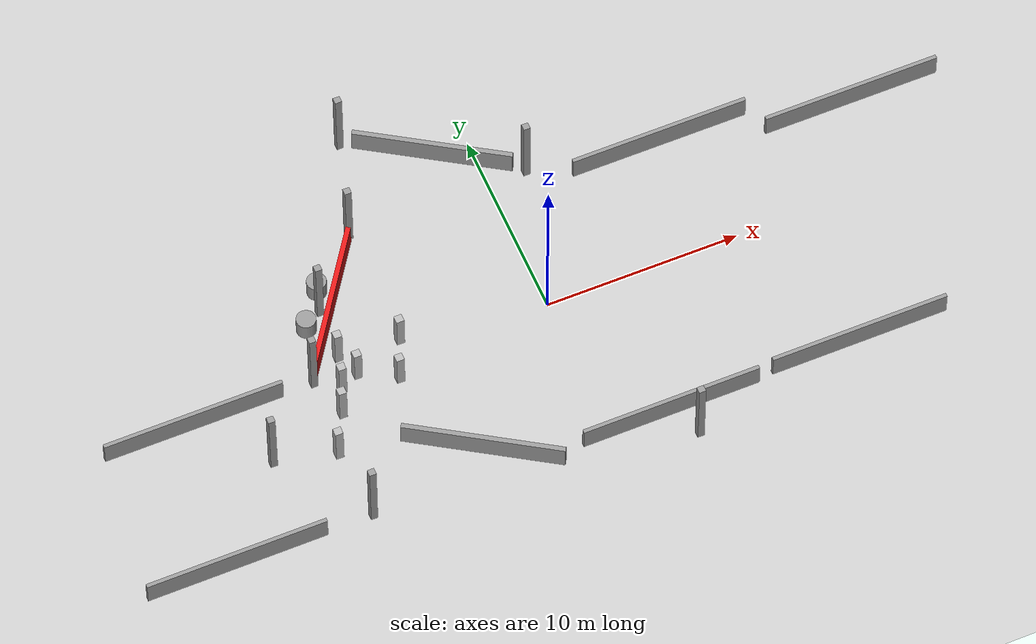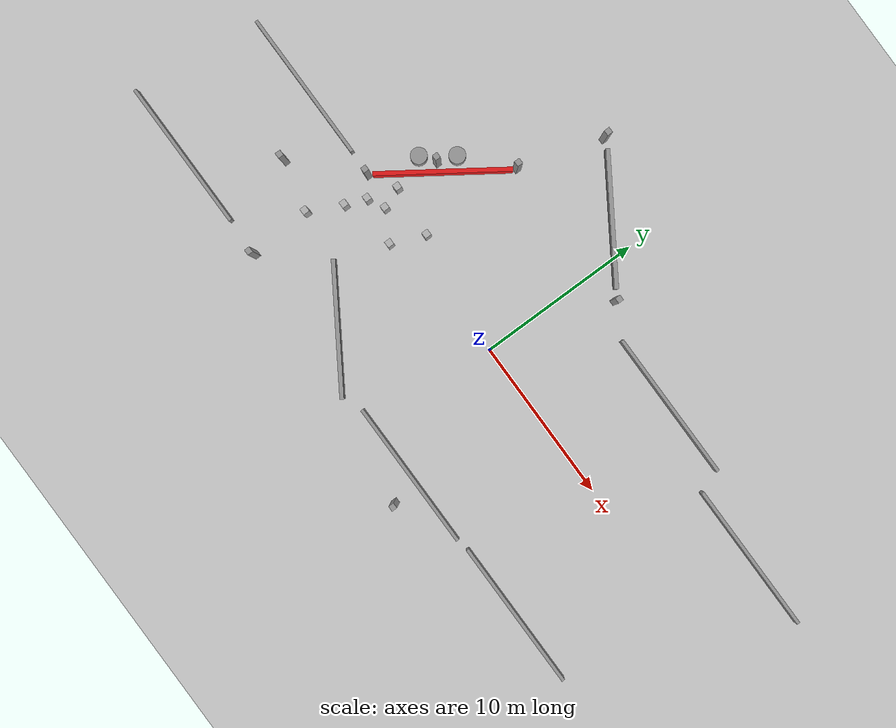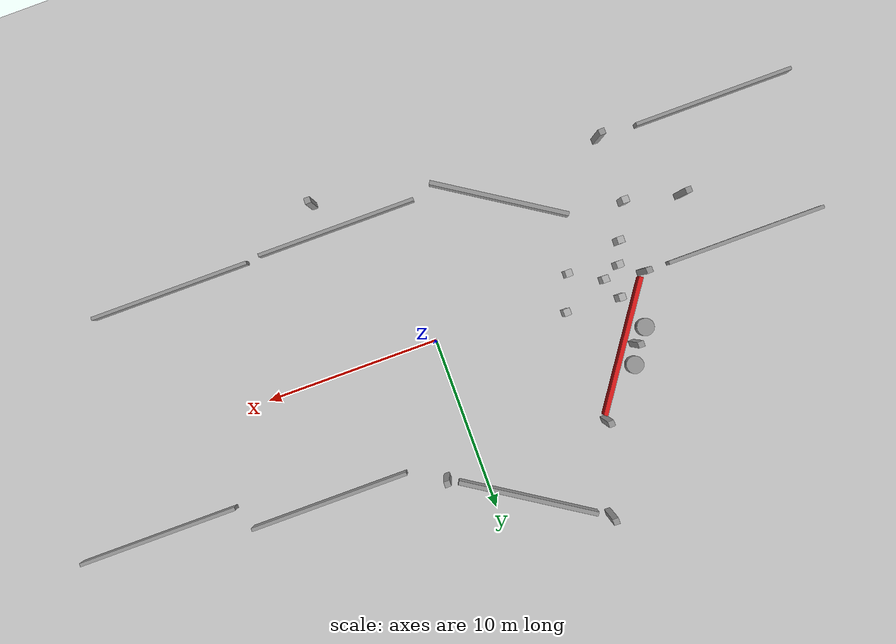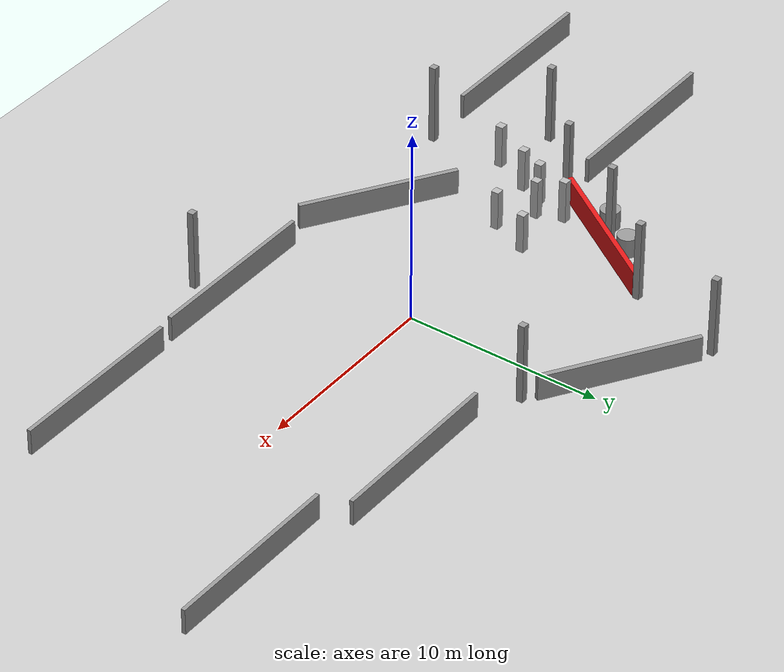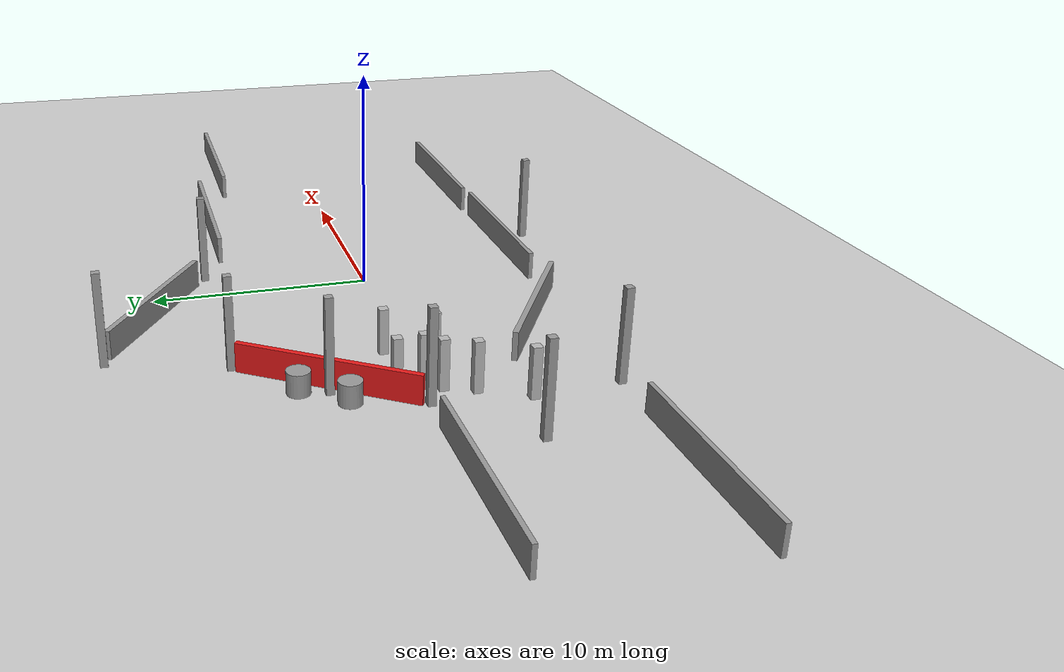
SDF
<sdf version="1.7">
 <world name="default">
  <plugin name="hello_world" filename="libhello_world.so"/>
  <model name="box">
   <pose>-10 0 0 0 0 0</pose>
   <link name="link">
    <collision name="collision"><geometry><box><size>0.4 0.4 0.28</size></box></geometry></collision>
    <visual name="visual"><geometry><box><size>0.4 0.4 4</size></box></geometry></visual>
   </link>
   <plugin name="move_obj" filename="libmove_obj.so"/>
  </model>
  <model name="box1">
   <pose>-7.377 1 0 0 0 0</pose>
   <link name="link">
    <collision name="collision"><geometry><box><size>0.4 0.4 0.28</size></box></geometry></collision>
    <visual name="visual"><geometry><box><size>0.4 0.4 4</size></box></geometry></visual>
   </link>
   <plugin name="move_obj" filename="libmove_obj.so"/>
  </model>
  <model name="box2">
   <pose>-8.2 -1 0 0 0 0</pose>
   <link name="link">
    <collision name="collision"><geometry><box><size>0.4 0.4 0.28</size></box></geometry></collision>
    <visual name="visual"><geometry><box><size>0.4 0.4 4</size></box></geometry></visual>
   </link>
   <plugin name="move_obj" filename="libmove_obj.so"/>
  </model>
  <model name="box3">
   <pose>-11 -0.5 0 0 0 0</pose>
   <link name="link">
    <collision name="collision"><geometry><box><size>0.4 0.4 0.28</size></box></geometry></collision>
    <visual name="visual"><geometry><box><size>0.4 0.4 4.4</size></box></geometry></visual>
   </link>
   <plugin name="move_obj" filename="libmove_obj.so"/>
  </model>
  <model name="box4">
   <pose>-10.5 1.25 0 0 0 0</pose>
   <link name="link">
    <collision name="collision"><geometry><box><size>0.4 0.4 0.28</size></box></geometry></collision>
    <visual name="visual"><geometry><box><size>0.4 0.4 4.4</size></box></geometry></visual>
   </link>
   <plugin name="move_obj" filename="libmove_obj.so"/>
  </model>
  <model name="box5">
   <pose>-11.5 -1.75 0 0 0 0</pose>
   <link name="link">
    <collision name="collision"><geometry><box><size>0.4 0.4 0.28</size></box></geometry></collision>
    <visual name="visual"><geometry><box><size>0.4 0.4 4.4</size></box></geometry></visual>
   </link>
   <plugin name="move_obj" filename="libmove_obj.so"/>
  </model>
  <model name="box6">
   <pose>-12.5 -3.75 0 0 0 0</pose>
   <link name="link">
    <collision name="collision"><geometry><box><size>0.4 0.4 0.28</size></box></geometry></collision>
    <visual name="visual"><geometry><box><size>0.4 0.4 4.4</size></box></geometry></visual>
   </link>
   <plugin name="move_obj" filename="libmove_obj.so"/>
  </model>
  <light name="sun" type="directional">
   <pose>0 0 10 0 -0 0</pose>
   <diffuse>0.8 0.8 0.8 1</diffuse>
   <specular>0.2 0.2 0.2 1</specular>
   <attenuation>
    <range>1000</range>
    <constant>0.9</constant>
    <linear>0.01</linear>
    <quadratic>0.001</quadratic>
   </attenuation>
   <direction>-0.5 0.1 -0.9</direction>
   <spot><inner_angle>0</inner_angle><outer_angle>0</outer_angle><falloff>0</falloff></spot>
  </light>
  <model name="ground_plane">
   <static>1</static>
   <link name="link">
    <collision name="collision">
     <geometry><plane><normal>0 0 1</normal><size>100 100</size></plane></geometry>
     <surface>
      <contact><collide_bitmask>65535</collide_bitmask></contact>
      <friction><ode><mu>100</mu><mu2>50</mu2></ode></friction>
     </surface>
    </collision>
    <visual name="visual">
     <cast_shadows>0</cast_shadows>
     <geometry><plane><normal>0 0 1</normal><size>100 100</size></plane></geometry>
     <material>
      <script><uri>file://media/materials/scripts/gazebo.material</uri><name>Gazebo/Grey</name></script>
     </material>
    </visual>
   </link>
  </model>
  <gravity>0 0 -9.8</gravity>
  <magnetic_field>6e-06 2.3e-05 -4.2e-05</magnetic_field>
  <atmosphere type="adiabatic"/>
  <physics type="ode">
   <max_step_size>0.001</max_step_size>
   <real_time_factor>1</real_time_factor>
   <real_time_update_rate>1000</real_time_update_rate>
  </physics>
  <scene><ambient>0.4 0.4 0.4 1</ambient><background>0.7 0.7 0.7 1</background><shadows>1</shadows></scene>
  <spherical_coordinates>
   <surface_model>EARTH_WGS84</surface_model>
   <latitude_deg>0</latitude_deg>
   <longitude_deg>0</longitude_deg>
   <elevation>0</elevation>
   <heading_deg>0</heading_deg>
  </spherical_coordinates>
  <light name="user_spot_light_0" type="spot">
   <pose>-15.8293 12.7519 1 0 -0 0</pose>
   <diffuse>0.5 0.5 0.5 1</diffuse>
   <specular>0.1 0.1 0.1 1</specular>
   <direction>0 0 -1</direction>
   <attenuation>
    <range>20</range>
    <constant>0.5</constant>
    <linear>0.01</linear>
    <quadratic>0.001</quadratic>
   </attenuation>
   <cast_shadows>0</cast_shadows>
   <spot><inner_angle>0.6</inner_angle><outer_angle>1</outer_angle><falloff>1</falloff></spot>
  </light>
  <light name="user_spot_light_1" type="spot">
   <pose>-0.982217 1.39334 1 0 -0 0</pose>
   <diffuse>0.5 0.5 0.5 1</diffuse>
   <specular>0.1 0.1 0.1 1</specular>
   <direction>0 0 -1</direction>
   <attenuation>
    <range>20</range>
    <constant>0.5</constant>
    <linear>0.01</linear>
    <quadratic>0.001</quadratic>
   </attenuation>
   <cast_shadows>0</cast_shadows>
   <spot><inner_angle>0.6</inner_angle><outer_angle>1</outer_angle><falloff>1</falloff></spot>
  </light>
  <model name="unit_box_clone_29">
   <link name="link">
    <inertial>
     <mass>2.4304</mass>
     <inertia><ixx>3.54705</ixx><ixy>0</ixy><ixz>0</ixz><iyy>3.54798</iyy><iyz>0</iyz><izz>0.047215</izz></inertia>
    </inertial>
    <visual name="visual">
     <geometry><box><size>0.344761 0.338027 4.17123</size></box></geometry>
     <material>
      <script><name>Gazebo/Grey</name><uri>file://media/materials/scripts/gazebo.material</uri></script>
      <shader type="pixel"><normal_map>__default__</normal_map></shader>
      <ambient>0.3 0.3 0.3 1</ambient>
      <diffuse>0.7 0.7 0.7 1</diffuse>
      <specular>0.01 0.01 0.01 1</specular>
      <emissive>0 0 0 1</emissive>
     </material>
    </visual>
    <collision name="collision">
     <geometry><box><size>0.344761 0.338027 4.17123</size></box></geometry>
     <surface>
      <friction>
       <ode><mu>1</mu><mu2>1</mu2><fdir1>0 0 0</fdir1><slip1>0</slip1><slip2>0</slip2></ode>
       <torsional>
        <coefficient>1</coefficient>
        <patch_radius>0</patch_radius>
        <surface_radius>0</surface_radius>
        <use_patch_radius>1</use_patch_radius>
        <ode><slip>0</slip></ode>
       </torsional>
      </friction>
      <bounce><restitution_coefficient>0</restitution_coefficient><threshold>1e+06</threshold></bounce>
      <contact>
       <collide_without_contact>0</collide_without_contact>
       <collide_without_contact_bitmask>1</collide_without_contact_bitmask>
       <collide_bitmask>1</collide_bitmask>
       <ode>
        <soft_cfm>0</soft_cfm>
        <soft_erp>0.2</soft_erp>
        <kp>1e+13</kp>
        <kd>1</kd>
        <max_vel>0.01</max_vel>
        <min_depth>0</min_depth>
       </ode>
       <bullet>
        <split_impulse>1</split_impulse>
        <split_impulse_penetration_threshold>-0.01</split_impulse_penetration_threshold>
        <soft_cfm>0</soft_cfm>
        <soft_erp>0.2</soft_erp>
        <kp>1e+13</kp>
        <kd>1</kd>
       </bullet>
      </contact>
     </surface>
    </collision>
   </link>
   <static>0</static>
   <pose>-15.5882 -2.99933 2.08562 1e-06 -1e-06 0.002596</pose>
  </model>
  <model name="unit_box_clone_31_clone">
   <link name="link">
    <inertial>
     <mass>2.4304</mass>
     <inertia><ixx>3.54705</ixx><ixy>0</ixy><ixz>0</ixz><iyy>3.54798</iyy><iyz>0</iyz><izz>0.047215</izz></inertia>
    </inertial>
    <visual name="visual">
     <geometry><box><size>0.344761 0.338027 4.17123</size></box></geometry>
     <material>
      <script><name>Gazebo/Grey</name><uri>file://media/materials/scripts/gazebo.material</uri></script>
      <shader type="pixel"><normal_map>__default__</normal_map></shader>
      <ambient>0.3 0.3 0.3 1</ambient>
      <diffuse>0.7 0.7 0.7 1</diffuse>
      <specular>0.01 0.01 0.01 1</specular>
      <emissive>0 0 0 1</emissive>
     </material>
    </visual>
    <collision name="collision">
     <geometry><box><size>0.344761 0.338027 4.17123</size></box></geometry>
     <surface>
      <friction>
       <ode><mu>1</mu><mu2>1</mu2><fdir1>0 0 0</fdir1><slip1>0</slip1><slip2>0</slip2></ode>
       <torsional>
        <coefficient>1</coefficient>
        <patch_radius>0</patch_radius>
        <surface_radius>0</surface_radius>
        <use_patch_radius>1</use_patch_radius>
        <ode><slip>0</slip></ode>
       </torsional>
      </friction>
      <bounce><restitution_coefficient>0</restitution_coefficient><threshold>1e+06</threshold></bounce>
      <contact>
       <collide_without_contact>0</collide_without_contact>
       <collide_without_contact_bitmask>1</collide_without_contact_bitmask>
       <collide_bitmask>1</collide_bitmask>
       <ode>
        <soft_cfm>0</soft_cfm>
        <soft_erp>0.2</soft_erp>
        <kp>1e+13</kp>
        <kd>1</kd>
        <max_vel>0.01</max_vel>
        <min_depth>0</min_depth>
       </ode>
       <bullet>
        <split_impulse>1</split_impulse>
        <split_impulse_penetration_threshold>-0.01</split_impulse_penetration_threshold>
        <soft_cfm>0</soft_cfm>
        <soft_erp>0.2</soft_erp>
        <kp>1e+13</kp>
        <kd>1</kd>
       </bullet>
      </contact>
     </surface>
    </collision>
   </link>
   <static>0</static>
   <pose>-12.283 -7.52819 2.08562 1e-06 -0 -0.001129</pose>
  </model>
  <model name="unit_box_clone_31_clone_6">
   <link name="link">
    <inertial>
     <mass>2.4304</mass>
     <inertia><ixx>3.54705</ixx><ixy>0</ixy><ixz>0</ixz><iyy>3.54798</iyy><iyz>0</iyz><izz>0.047215</izz></inertia>
    </inertial>
    <visual name="visual">
     <geometry><box><size>0.344761 0.338027 4.17123</size></box></geometry>
     <material>
      <script><name>Gazebo/Grey</name><uri>file://media/materials/scripts/gazebo.material</uri></script>
      <shader type="pixel"><normal_map>__default__</normal_map></shader>
      <ambient>0.3 0.3 0.3 1</ambient>
      <diffuse>0.7 0.7 0.7 1</diffuse>
      <specular>0.01 0.01 0.01 1</specular>
      <emissive>0 0 0 1</emissive>
     </material>
    </visual>
    <collision name="collision">
     <geometry><box><size>0.344761 0.338027 4.17123</size></box></geometry>
     <surface>
      <friction>
       <ode><mu>1</mu><mu2>1</mu2><fdir1>0 0 0</fdir1><slip1>0</slip1><slip2>0</slip2></ode>
       <torsional>
        <coefficient>1</coefficient>
        <patch_radius>0</patch_radius>
        <surface_radius>0</surface_radius>
        <use_patch_radius>1</use_patch_radius>
        <ode><slip>0</slip></ode>
       </torsional>
      </friction>
      <bounce><restitution_coefficient>0</restitution_coefficient><threshold>1e+06</threshold></bounce>
      <contact>
       <collide_without_contact>0</collide_without_contact>
       <collide_without_contact_bitmask>1</collide_without_contact_bitmask>
       <collide_bitmask>1</collide_bitmask>
       <ode>
        <soft_cfm>0</soft_cfm>
        <soft_erp>0.2</soft_erp>
        <kp>1e+13</kp>
        <kd>1</kd>
        <max_vel>0.01</max_vel>
        <min_depth>0</min_depth>
       </ode>
       <bullet>
        <split_impulse>1</split_impulse>
        <split_impulse_penetration_threshold>-0.01</split_impulse_penetration_threshold>
        <soft_cfm>0</soft_cfm>
        <soft_erp>0.2</soft_erp>
        <kp>1e+13</kp>
        <kd>1</kd>
       </bullet>
      </contact>
     </surface>
    </collision>
   </link>
   <static>0</static>
   <pose>1.99611 7.41302 2.08562 -5e-06 -1e-06 -0.001128</pose>
  </model>
  <model name="unit_box_clone_31_clone_7">
   <link name="link">
    <inertial>
     <mass>2.4304</mass>
     <inertia><ixx>3.54705</ixx><ixy>0</ixy><ixz>0</ixz><iyy>3.54798</iyy><iyz>0</iyz><izz>0.047215</izz></inertia>
    </inertial>
    <visual name="visual">
     <geometry><box><size>0.344761 0.338027 4.17123</size></box></geometry>
     <material>
      <script><name>Gazebo/Grey</name><uri>file://media/materials/scripts/gazebo.material</uri></script>
      <shader type="pixel"><normal_map>__default__</normal_map></shader>
      <ambient>0.3 0.3 0.3 1</ambient>
      <diffuse>0.7 0.7 0.7 1</diffuse>
      <specular>0.01 0.01 0.01 1</specular>
      <emissive>0 0 0 1</emissive>
     </material>
    </visual>
    <collision name="collision">
     <geometry><box><size>0.344761 0.338027 4.17123</size></box></geometry>
     <surface>
      <friction>
       <ode><mu>1</mu><mu2>1</mu2><fdir1>0 0 0</fdir1><slip1>0</slip1><slip2>0</slip2></ode>
       <torsional>
        <coefficient>1</coefficient>
        <patch_radius>0</patch_radius>
        <surface_radius>0</surface_radius>
        <use_patch_radius>1</use_patch_radius>
        <ode><slip>0</slip></ode>
       </torsional>
      </friction>
      <bounce><restitution_coefficient>0</restitution_coefficient><threshold>1e+06</threshold></bounce>
      <contact>
       <collide_without_contact>0</collide_without_contact>
       <collide_without_contact_bitmask>1</collide_without_contact_bitmask>
       <collide_bitmask>1</collide_bitmask>
       <ode>
        <soft_cfm>0</soft_cfm>
        <soft_erp>0.2</soft_erp>
        <kp>1e+13</kp>
        <kd>1</kd>
        <max_vel>0.01</max_vel>
        <min_depth>0</min_depth>
       </ode>
       <bullet>
        <split_impulse>1</split_impulse>
        <split_impulse_penetration_threshold>-0.01</split_impulse_penetration_threshold>
        <soft_cfm>0</soft_cfm>
        <soft_erp>0.2</soft_erp>
        <kp>1e+13</kp>
        <kd>1</kd>
       </bullet>
      </contact>
     </surface>
    </collision>
   </link>
   <static>0</static>
   <pose>3.84905 -9.47615 2.08562 1.1e-05 2e-06 -0.001127</pose>
  </model>
  <model name="unit_box_wall">
   <link name="link">
    <inertial>
     <mass>1</mass>
     <inertia>
      <ixx>0.166667</ixx>
      <ixy>0</ixy>
      <ixz>0</ixz>
      <iyy>0.166667</iyy>
      <iyz>0</iyz>
      <izz>0.166667</izz>
     </inertia>
    </inertial>
    <pose>0 0 0 0 -0 1</pose>
    <visual name="visual">
     <geometry><box><size>0.25 8 1.5</size></box></geometry>
     <material>
      <script><name>Gazebo/Grey</name><uri>file://media/materials/scripts/gazebo.material</uri></script>
      <shader type="pixel"><normal_map>__default__</normal_map></shader>
      <ambient>0.3 0.3 0.3 1</ambient>
      <diffuse>0.7 0.7 0.7 1</diffuse>
      <specular>0.01 0.01 0.01 1</specular>
      <emissive>0 0 0 1</emissive>
     </material>
    </visual>
    <collision name="collision">
     <geometry><box><size>0.25 8 1.5</size></box></geometry>
     <surface>
      <friction>
       <ode><mu>1</mu><mu2>1</mu2><fdir1>0 0 0</fdir1><slip1>0</slip1><slip2>0</slip2></ode>
       <torsional>
        <coefficient>1</coefficient>
        <patch_radius>0</patch_radius>
        <surface_radius>0</surface_radius>
        <use_patch_radius>1</use_patch_radius>
        <ode><slip>0</slip></ode>
       </torsional>
      </friction>
      <bounce><restitution_coefficient>0</restitution_coefficient><threshold>1e+06</threshold></bounce>
      <contact>
       <collide_without_contact>0</collide_without_contact>
       <collide_without_contact_bitmask>1</collide_without_contact_bitmask>
       <collide_bitmask>1</collide_bitmask>
       <ode>
        <soft_cfm>0</soft_cfm>
        <soft_erp>0.2</soft_erp>
        <kp>1e+13</kp>
        <kd>1</kd>
        <max_vel>0.01</max_vel>
        <min_depth>0</min_depth>
       </ode>
       <bullet>
        <split_impulse>1</split_impulse>
        <split_impulse_penetration_threshold>-0.01</split_impulse_penetration_threshold>
        <soft_cfm>0</soft_cfm>
        <soft_erp>0.2</soft_erp>
        <kp>1e+13</kp>
        <kd>1</kd>
       </bullet>
      </contact>
     </surface>
    </collision>
   </link>
   <static>0</static>
   <pose>-6.05158 -6.25937 0.5 0 -0 0</pose>
  </model>
  <model name="unit_box_wall_clone_0">
   <link name="link">
    <inertial>
     <mass>1</mass>
     <inertia>
      <ixx>0.166667</ixx>
      <ixy>0</ixy>
      <ixz>0</ixz>
      <iyy>0.166667</iyy>
      <iyz>0</iyz>
      <izz>0.166667</izz>
     </inertia>
    </inertial>
    <pose>0 0 0 0 -0 1</pose>
    <visual name="visual">
     <geometry><box><size>0.25 8 1.5</size></box></geometry>
     <material>
      <script><name>Gazebo/Grey</name><uri>file://media/materials/scripts/gazebo.material</uri></script>
      <shader type="pixel"><normal_map>__default__</normal_map></shader>
      <ambient>0.3 0.3 0.3 1</ambient>
      <diffuse>0.7 0.7 0.7 1</diffuse>
      <specular>0.01 0.01 0.01 1</specular>
      <emissive>0 0 0 1</emissive>
     </material>
    </visual>
    <collision name="collision">
     <geometry><box><size>0.25 8 1.5</size></box></geometry>
     <surface>
      <friction>
       <ode><mu>1</mu><mu2>1</mu2><fdir1>0 0 0</fdir1><slip1>0</slip1><slip2>0</slip2></ode>
       <torsional>
        <coefficient>1</coefficient>
        <patch_radius>0</patch_radius>
        <surface_radius>0</surface_radius>
        <use_patch_radius>1</use_patch_radius>
        <ode><slip>0</slip></ode>
       </torsional>
      </friction>
      <bounce><restitution_coefficient>0</restitution_coefficient><threshold>1e+06</threshold></bounce>
      <contact>
       <collide_without_contact>0</collide_without_contact>
       <collide_without_contact_bitmask>1</collide_without_contact_bitmask>
       <collide_bitmask>1</collide_bitmask>
       <ode>
        <soft_cfm>0</soft_cfm>
        <soft_erp>0.2</soft_erp>
        <kp>1e+13</kp>
        <kd>1</kd>
        <max_vel>0.01</max_vel>
        <min_depth>0</min_depth>
       </ode>
       <bullet>
        <split_impulse>1</split_impulse>
        <split_impulse_penetration_threshold>-0.01</split_impulse_penetration_threshold>
        <soft_cfm>0</soft_cfm>
        <soft_erp>0.2</soft_erp>
        <kp>1e+13</kp>
        <kd>1</kd>
       </bullet>
      </contact>
     </surface>
    </collision>
   </link>
   <static>0</static>
   <pose>-1.86379 10.0381 0.5 0 -0 0</pose>
  </model>
  <model name="unit_box_clone_31_clone_6_clone">
   <link name="link">
    <inertial>
     <mass>2.4304</mass>
     <inertia><ixx>3.54705</ixx><ixy>0</ixy><ixz>0</ixz><iyy>3.54798</iyy><iyz>0</iyz><izz>0.047215</izz></inertia>
    </inertial>
    <visual name="visual">
     <geometry><box><size>0.344761 0.338027 4.17123</size></box></geometry>
     <material>
      <script><name>Gazebo/Grey</name><uri>file://media/materials/scripts/gazebo.material</uri></script>
      <shader type="pixel"><normal_map>__default__</normal_map></shader>
      <ambient>0.3 0.3 0.3 1</ambient>
      <diffuse>0.7 0.7 0.7 1</diffuse>
      <specular>0.01 0.01 0.01 1</specular>
      <emissive>0 0 0 1</emissive>
     </material>
    </visual>
    <collision name="collision">
     <geometry><box><size>0.344761 0.338027 4.17123</size></box></geometry>
     <surface>
      <friction>
       <ode><mu>1</mu><mu2>1</mu2><fdir1>0 0 0</fdir1><slip1>0</slip1><slip2>0</slip2></ode>
       <torsional>
        <coefficient>1</coefficient>
        <patch_radius>0</patch_radius>
        <surface_radius>0</surface_radius>
        <use_patch_radius>1</use_patch_radius>
        <ode><slip>0</slip></ode>
       </torsional>
      </friction>
      <bounce><restitution_coefficient>0</restitution_coefficient><threshold>1e+06</threshold></bounce>
      <contact>
       <collide_without_contact>0</collide_without_contact>
       <collide_without_contact_bitmask>1</collide_without_contact_bitmask>
       <collide_bitmask>1</collide_bitmask>
       <ode>
        <soft_cfm>0</soft_cfm>
        <soft_erp>0.2</soft_erp>
        <kp>1e+13</kp>
        <kd>1</kd>
        <max_vel>0.01</max_vel>
        <min_depth>0</min_depth>
       </ode>
       <bullet>
        <split_impulse>1</split_impulse>
        <split_impulse_penetration_threshold>-0.01</split_impulse_penetration_threshold>
        <soft_cfm>0</soft_cfm>
        <soft_erp>0.2</soft_erp>
        <kp>1e+13</kp>
        <kd>1</kd>
       </bullet>
      </contact>
     </surface>
    </collision>
   </link>
   <static>0</static>
   <pose>-5.8371 12.4117 2.08562 6e-06 1e-06 -0.001128</pose>
  </model>
  <model name="unit_box_clone_31_clone_6_clone_clone">
   <link name="link">
    <inertial>
     <mass>2.4304</mass>
     <inertia><ixx>3.54705</ixx><ixy>0</ixy><ixz>0</ixz><iyy>3.54798</iyy><iyz>0</iyz><izz>0.047215</izz></inertia>
    </inertial>
    <visual name="visual">
     <geometry><box><size>0.344761 0.338027 4.17123</size></box></geometry>
     <material>
      <script><name>Gazebo/Grey</name><uri>file://media/materials/scripts/gazebo.material</uri></script>
      <shader type="pixel"><normal_map>__default__</normal_map></shader>
      <ambient>0.3 0.3 0.3 1</ambient>
      <diffuse>0.7 0.7 0.7 1</diffuse>
      <specular>0.01 0.01 0.01 1</specular>
      <emissive>0 0 0 1</emissive>
     </material>
    </visual>
    <collision name="collision">
     <geometry><box><size>0.344761 0.338027 4.17123</size></box></geometry>
     <surface>
      <friction>
       <ode><mu>1</mu><mu2>1</mu2><fdir1>0 0 0</fdir1><slip1>0</slip1><slip2>0</slip2></ode>
       <torsional>
        <coefficient>1</coefficient>
        <patch_radius>0</patch_radius>
        <surface_radius>0</surface_radius>
        <use_patch_radius>1</use_patch_radius>
        <ode><slip>0</slip></ode>
       </torsional>
      </friction>
      <bounce><restitution_coefficient>0</restitution_coefficient><threshold>1e+06</threshold></bounce>
      <contact>
       <collide_without_contact>0</collide_without_contact>
       <collide_without_contact_bitmask>1</collide_without_contact_bitmask>
       <collide_bitmask>1</collide_bitmask>
       <ode>
        <soft_cfm>0</soft_cfm>
        <soft_erp>0.2</soft_erp>
        <kp>1e+13</kp>
        <kd>1</kd>
        <max_vel>0.01</max_vel>
        <min_depth>0</min_depth>
       </ode>
       <bullet>
        <split_impulse>1</split_impulse>
        <split_impulse_penetration_threshold>-0.01</split_impulse_penetration_threshold>
        <soft_cfm>0</soft_cfm>
        <soft_erp>0.2</soft_erp>
        <kp>1e+13</kp>
        <kd>1</kd>
       </bullet>
      </contact>
     </surface>
    </collision>
   </link>
   <static>0</static>
   <pose>-12.1387 0.324525 2.08562 6e-06 1e-06 -0.001128</pose>
  </model>
  <model name="unit_box_clone_31_clone_6_clone_clone_0">
   <link name="link">
    <inertial>
     <mass>2.4304</mass>
     <inertia><ixx>3.54705</ixx><ixy>0</ixy><ixz>0</ixz><iyy>3.54798</iyy><iyz>0</iyz><izz>0.047215</izz></inertia>
    </inertial>
    <visual name="visual">
     <geometry><box><size>0.344761 0.338027 4.17123</size></box></geometry>
     <material>
      <script><name>Gazebo/Grey</name><uri>file://media/materials/scripts/gazebo.material</uri></script>
      <shader type="pixel"><normal_map>__default__</normal_map></shader>
      <ambient>0.3 0.3 0.3 1</ambient>
      <diffuse>0.7 0.7 0.7 1</diffuse>
      <specular>0.01 0.01 0.01 1</specular>
      <emissive>0 0 0 1</emissive>
     </material>
    </visual>
    <collision name="collision">
     <geometry><box><size>0.344761 0.338027 4.17123</size></box></geometry>
     <surface>
      <friction>
       <ode><mu>1</mu><mu2>1</mu2><fdir1>0 0 0</fdir1><slip1>0</slip1><slip2>0</slip2></ode>
       <torsional>
        <coefficient>1</coefficient>
        <patch_radius>0</patch_radius>
        <surface_radius>0</surface_radius>
        <use_patch_radius>1</use_patch_radius>
        <ode><slip>0</slip></ode>
       </torsional>
      </friction>
      <bounce><restitution_coefficient>0</restitution_coefficient><threshold>1e+06</threshold></bounce>
      <contact>
       <collide_without_contact>0</collide_without_contact>
       <collide_without_contact_bitmask>1</collide_without_contact_bitmask>
       <collide_bitmask>1</collide_bitmask>
       <ode>
        <soft_cfm>0</soft_cfm>
        <soft_erp>0.2</soft_erp>
        <kp>1e+13</kp>
        <kd>1</kd>
        <max_vel>0.01</max_vel>
        <min_depth>0</min_depth>
       </ode>
       <bullet>
        <split_impulse>1</split_impulse>
        <split_impulse_penetration_threshold>-0.01</split_impulse_penetration_threshold>
        <soft_cfm>0</soft_cfm>
        <soft_erp>0.2</soft_erp>
        <kp>1e+13</kp>
        <kd>1</kd>
       </bullet>
      </contact>
     </surface>
    </collision>
   </link>
   <static>0</static>
   <pose>-7.3962 7.39613 2.08562 6e-06 1e-06 -0.001128</pose>
  </model>
  <model name="unit_box_clone_31_clone_6_clone_clone_1">
   <link name="link">
    <inertial>
     <mass>2.4304</mass>
     <inertia><ixx>3.54705</ixx><ixy>0</ixy><ixz>0</ixz><iyy>3.54798</iyy><iyz>0</iyz><izz>0.047215</izz></inertia>
    </inertial>
    <visual name="visual">
     <geometry><box><size>0.344761 0.338027 4.17123</size></box></geometry>
     <material>
      <script><name>Gazebo/Grey</name><uri>file://media/materials/scripts/gazebo.material</uri></script>
      <shader type="pixel"><normal_map>__default__</normal_map></shader>
      <ambient>0.3 0.3 0.3 1</ambient>
      <diffuse>0.7 0.7 0.7 1</diffuse>
      <specular>0.01 0.01 0.01 1</specular>
      <emissive>0 0 0 1</emissive>
     </material>
    </visual>
    <collision name="collision">
     <geometry><box><size>0.344761 0.338027 4.17123</size></box></geometry>
     <surface>
      <friction>
       <ode><mu>1</mu><mu2>1</mu2><fdir1>0 0 0</fdir1><slip1>0</slip1><slip2>0</slip2></ode>
       <torsional>
        <coefficient>1</coefficient>
        <patch_radius>0</patch_radius>
        <surface_radius>0</surface_radius>
        <use_patch_radius>1</use_patch_radius>
        <ode><slip>0</slip></ode>
       </torsional>
      </friction>
      <bounce><restitution_coefficient>0</restitution_coefficient><threshold>1e+06</threshold></bounce>
      <contact>
       <collide_without_contact>0</collide_without_contact>
       <collide_without_contact_bitmask>1</collide_without_contact_bitmask>
       <collide_bitmask>1</collide_bitmask>
       <ode>
        <soft_cfm>0</soft_cfm>
        <soft_erp>0.2</soft_erp>
        <kp>1e+13</kp>
        <kd>1</kd>
        <max_vel>0.01</max_vel>
        <min_depth>0</min_depth>
       </ode>
       <bullet>
        <split_impulse>1</split_impulse>
        <split_impulse_penetration_threshold>-0.01</split_impulse_penetration_threshold>
        <soft_cfm>0</soft_cfm>
        <soft_erp>0.2</soft_erp>
        <kp>1e+13</kp>
        <kd>1</kd>
       </bullet>
      </contact>
     </surface>
    </collision>
   </link>
   <static>0</static>
   <pose>-10.3531 3.92663 2.08562 6e-06 1e-06 -0.001128</pose>
  </model>
  <model name="unit_cylinder">
   <pose>-10.0143 5.09431 0.5 0 -0 0</pose>
   <link name="link">
    <inertial>
     <mass>1</mass>
     <inertia><ixx>0.145833</ixx><ixy>0</ixy><ixz>0</ixz><iyy>0.145833</iyy><iyz>0</iyz><izz>0.125</izz></inertia>
    </inertial>
    <collision name="collision">
     <geometry><cylinder><radius>0.5</radius><length>1</length></cylinder></geometry>
    </collision>
    <visual name="visual">
     <geometry><cylinder><radius>0.5</radius><length>1</length></cylinder></geometry>
     <material>
      <script><name>Gazebo/Grey</name><uri>file://media/materials/scripts/gazebo.material</uri></script>
     </material>
    </visual>
   </link>
  </model>
  <model name="unit_cylinder_clone">
   <pose>-11.2873 3.30653 0.5 0 -0 0</pose>
   <link name="link">
    <inertial>
     <mass>1</mass>
     <inertia><ixx>0.145833</ixx><ixy>0</ixy><ixz>0</ixz><iyy>0.145833</iyy><iyz>0</iyz><izz>0.125</izz></inertia>
    </inertial>
    <collision name="collision">
     <geometry><cylinder><radius>0.5</radius><length>1</length></cylinder></geometry>
    </collision>
    <visual name="visual">
     <geometry><cylinder><radius>0.5</radius><length>1</length></cylinder></geometry>
     <material>
      <script><name>Gazebo/Grey</name><uri>file://media/materials/scripts/gazebo.material</uri></script>
     </material>
    </visual>
   </link>
  </model>
  <model name="unit_box_w">
   <link name="link">
    <inertial>
     <mass>1</mass>
     <inertia>
      <ixx>0.166667</ixx>
      <ixy>0</ixy>
      <ixz>0</ixz>
      <iyy>0.166667</iyy>
      <iyz>0</iyz>
      <izz>0.166667</izz>
     </inertia>
    </inertial>
    <visual name="visual">
     <geometry><box><size>9.2 0.2 1.5</size></box></geometry>
     <material>
      <script><name>Gazebo/Grey</name><uri>file://media/materials/scripts/gazebo.material</uri></script>
      <shader type="pixel"><normal_map>__default__</normal_map></shader>
      <ambient>0.3 0.3 0.3 1</ambient>
      <diffuse>0.7 0.7 0.7 1</diffuse>
      <specular>0.01 0.01 0.01 1</specular>
      <emissive>0 0 0 1</emissive>
     </material>
    </visual>
    <collision name="collision">
     <geometry><box><size>9.2 0.2 1.5</size></box></geometry>
     <surface>
      <friction>
       <ode><mu>1</mu><mu2>1</mu2><fdir1>0 0 0</fdir1><slip1>0</slip1><slip2>0</slip2></ode>
       <torsional>
        <coefficient>1</coefficient>
        <patch_radius>0</patch_radius>
        <surface_radius>0</surface_radius>
        <use_patch_radius>1</use_patch_radius>
        <ode><slip>0</slip></ode>
       </torsional>
      </friction>
      <bounce><restitution_coefficient>0</restitution_coefficient><threshold>1e+06</threshold></bounce>
      <contact>
       <collide_without_contact>0</collide_without_contact>
       <collide_without_contact_bitmask>1</collide_without_contact_bitmask>
       <collide_bitmask>1</collide_bitmask>
       <ode>
        <soft_cfm>0</soft_cfm>
        <soft_erp>0.2</soft_erp>
        <kp>1e+13</kp>
        <kd>1</kd>
        <max_vel>0.01</max_vel>
        <min_depth>0</min_depth>
       </ode>
       <bullet>
        <split_impulse>1</split_impulse>
        <split_impulse_penetration_threshold>-0.01</split_impulse_penetration_threshold>
        <soft_cfm>0</soft_cfm>
        <soft_erp>0.2</soft_erp>
        <kp>1e+13</kp>
        <kd>1</kd>
       </bullet>
      </contact>
     </surface>
    </collision>
   </link>
   <link name="link_clone">
    <inertial>
     <mass>1</mass>
     <inertia>
      <ixx>0.166667</ixx>
      <ixy>0</ixy>
      <ixz>0</ixz>
      <iyy>0.166667</iyy>
      <iyz>0</iyz>
      <izz>0.166667</izz>
     </inertia>
    </inertial>
    <pose>5.58867 14.2577 0 0 -0 0</pose>
    <visual name="visual">
     <geometry><box><size>9.2 0.2 1.5</size></box></geometry>
     <material>
      <script><name>Gazebo/Grey</name><uri>file://media/materials/scripts/gazebo.material</uri></script>
      <shader type="pixel"><normal_map>__default__</normal_map></shader>
      <ambient>0.3 0.3 0.3 1</ambient>
      <diffuse>0.7 0.7 0.7 1</diffuse>
      <specular>0.01 0.01 0.01 1</specular>
      <emissive>0 0 0 1</emissive>
     </material>
    </visual>
    <collision name="collision">
     <geometry><box><size>9.2 0.2 1.5</size></box></geometry>
     <surface>
      <friction>
       <ode><mu>1</mu><mu2>1</mu2><fdir1>0 0 0</fdir1><slip1>0</slip1><slip2>0</slip2></ode>
       <torsional>
        <coefficient>1</coefficient>
        <patch_radius>0</patch_radius>
        <surface_radius>0</surface_radius>
        <use_patch_radius>1</use_patch_radius>
        <ode><slip>0</slip></ode>
       </torsional>
      </friction>
      <bounce><restitution_coefficient>0</restitution_coefficient><threshold>1e+06</threshold></bounce>
      <contact>
       <collide_without_contact>0</collide_without_contact>
       <collide_without_contact_bitmask>1</collide_without_contact_bitmask>
       <collide_bitmask>1</collide_bitmask>
       <ode>
        <soft_cfm>0</soft_cfm>
        <soft_erp>0.2</soft_erp>
        <kp>1e+13</kp>
        <kd>1</kd>
        <max_vel>0.01</max_vel>
        <min_depth>0</min_depth>
       </ode>
       <bullet>
        <split_impulse>1</split_impulse>
        <split_impulse_penetration_threshold>-0.01</split_impulse_penetration_threshold>
        <soft_cfm>0</soft_cfm>
        <soft_erp>0.2</soft_erp>
        <kp>1e+13</kp>
        <kd>1</kd>
       </bullet>
      </contact>
     </surface>
    </collision>
   </link>
   <link name="link_clone_0">
    <inertial>
     <mass>1</mass>
     <inertia>
      <ixx>0.166667</ixx>
      <ixy>0</ixy>
      <ixz>0</ixz>
      <iyy>0.166667</iyy>
      <iyz>0</iyz>
      <izz>0.166667</izz>
     </inertia>
    </inertial>
    <pose>9.96066 0.139534 0 0 -0 0</pose>
    <visual name="visual">
     <geometry><box><size>9.2 0.2 1.5</size></box></geometry>
     <material>
      <script><name>Gazebo/Grey</name><uri>file://media/materials/scripts/gazebo.material</uri></script>
      <shader type="pixel"><normal_map>__default__</normal_map></shader>
      <ambient>0.3 0.3 0.3 1</ambient>
      <diffuse>0.7 0.7 0.7 1</diffuse>
      <specular>0.01 0.01 0.01 1</specular>
      <emissive>0 0 0 1</emissive>
     </material>
    </visual>
    <collision name="collision">
     <geometry><box><size>9.2 0.2 1.5</size></box></geometry>
     <surface>
      <friction>
       <ode><mu>1</mu><mu2>1</mu2><fdir1>0 0 0</fdir1><slip1>0</slip1><slip2>0</slip2></ode>
       <torsional>
        <coefficient>1</coefficient>
        <patch_radius>0</patch_radius>
        <surface_radius>0</surface_radius>
        <use_patch_radius>1</use_patch_radius>
        <ode><slip>0</slip></ode>
       </torsional>
      </friction>
      <bounce><restitution_coefficient>0</restitution_coefficient><threshold>1e+06</threshold></bounce>
      <contact>
       <collide_without_contact>0</collide_without_contact>
       <collide_without_contact_bitmask>1</collide_without_contact_bitmask>
       <collide_bitmask>1</collide_bitmask>
       <ode>
        <soft_cfm>0</soft_cfm>
        <soft_erp>0.2</soft_erp>
        <kp>1e+13</kp>
        <kd>1</kd>
        <max_vel>0.01</max_vel>
        <min_depth>0</min_depth>
       </ode>
       <bullet>
        <split_impulse>1</split_impulse>
        <split_impulse_penetration_threshold>-0.01</split_impulse_penetration_threshold>
        <soft_cfm>0</soft_cfm>
        <soft_erp>0.2</soft_erp>
        <kp>1e+13</kp>
        <kd>1</kd>
       </bullet>
      </contact>
     </surface>
    </collision>
   </link>
   <link name="link_clone_1">
    <inertial>
     <mass>1</mass>
     <inertia>
      <ixx>0.166667</ixx>
      <ixy>0</ixy>
      <ixz>0</ixz>
      <iyy>0.166667</iyy>
      <iyz>0</iyz>
      <izz>0.166667</izz>
     </inertia>
    </inertial>
    <pose>15.2543 12.8226 0 0 -0 0</pose>
    <visual name="visual">
     <geometry><box><size>9.2 0.2 1.5</size></box></geometry>
     <material>
      <script><name>Gazebo/Grey</name><uri>file://media/materials/scripts/gazebo.material</uri></script>
      <shader type="pixel"><normal_map>__default__</normal_map></shader>
      <ambient>0.3 0.3 0.3 1</ambient>
      <diffuse>0.7 0.7 0.7 1</diffuse>
      <specular>0.01 0.01 0.01 1</specular>
      <emissive>0 0 0 1</emissive>
     </material>
    </visual>
    <collision name="collision">
     <geometry><box><size>9.2 0.2 1.5</size></box></geometry>
     <surface>
      <friction>
       <ode><mu>1</mu><mu2>1</mu2><fdir1>0 0 0</fdir1><slip1>0</slip1><slip2>0</slip2></ode>
       <torsional>
        <coefficient>1</coefficient>
        <patch_radius>0</patch_radius>
        <surface_radius>0</surface_radius>
        <use_patch_radius>1</use_patch_radius>
        <ode><slip>0</slip></ode>
       </torsional>
      </friction>
      <bounce><restitution_coefficient>0</restitution_coefficient><threshold>1e+06</threshold></bounce>
      <contact>
       <collide_without_contact>0</collide_without_contact>
       <collide_without_contact_bitmask>1</collide_without_contact_bitmask>
       <collide_bitmask>1</collide_bitmask>
       <ode>
        <soft_cfm>0</soft_cfm>
        <soft_erp>0.2</soft_erp>
        <kp>1e+13</kp>
        <kd>1</kd>
        <max_vel>0.01</max_vel>
        <min_depth>0</min_depth>
       </ode>
       <bullet>
        <split_impulse>1</split_impulse>
        <split_impulse_penetration_threshold>-0.01</split_impulse_penetration_threshold>
        <soft_cfm>0</soft_cfm>
        <soft_erp>0.2</soft_erp>
        <kp>1e+13</kp>
        <kd>1</kd>
       </bullet>
      </contact>
     </surface>
    </collision>
   </link>
   <link name="link_clone_2">
    <inertial>
     <mass>1</mass>
     <inertia>
      <ixx>0.166667</ixx>
      <ixy>0</ixy>
      <ixz>0</ixz>
      <iyy>0.166667</iyy>
      <iyz>0</iyz>
      <izz>0.166667</izz>
     </inertia>
    </inertial>
    <pose>-22.304 0.346314 0 0 -0 0</pose>
    <visual name="visual">
     <geometry><box><size>9.2 0.2 1.5</size></box></geometry>
     <material>
      <script><name>Gazebo/Grey</name><uri>file://media/materials/scripts/gazebo.material</uri></script>
      <shader type="pixel"><normal_map>__default__</normal_map></shader>
      <ambient>0.3 0.3 0.3 1</ambient>
      <diffuse>0.7 0.7 0.7 1</diffuse>
      <specular>0.01 0.01 0.01 1</specular>
      <emissive>0 0 0 1</emissive>
     </material>
    </visual>
    <collision name="collision">
     <geometry><box><size>9.2 0.2 1.5</size></box></geometry>
     <surface>
      <friction>
       <ode><mu>1</mu><mu2>1</mu2><fdir1>0 0 0</fdir1><slip1>0</slip1><slip2>0</slip2></ode>
       <torsional>
        <coefficient>1</coefficient>
        <patch_radius>0</patch_radius>
        <surface_radius>0</surface_radius>
        <use_patch_radius>1</use_patch_radius>
        <ode><slip>0</slip></ode>
       </torsional>
      </friction>
      <bounce><restitution_coefficient>0</restitution_coefficient><threshold>1e+06</threshold></bounce>
      <contact>
       <collide_without_contact>0</collide_without_contact>
       <collide_without_contact_bitmask>1</collide_without_contact_bitmask>
       <collide_bitmask>1</collide_bitmask>
       <ode>
        <soft_cfm>0</soft_cfm>
        <soft_erp>0.2</soft_erp>
        <kp>1e+13</kp>
        <kd>1</kd>
        <max_vel>0.01</max_vel>
        <min_depth>0</min_depth>
       </ode>
       <bullet>
        <split_impulse>1</split_impulse>
        <split_impulse_penetration_threshold>-0.01</split_impulse_penetration_threshold>
        <soft_cfm>0</soft_cfm>
        <soft_erp>0.2</soft_erp>
        <kp>1e+13</kp>
        <kd>1</kd>
       </bullet>
      </contact>
     </surface>
    </collision>
   </link>
   <link name="link_clone_3">
    <inertial>
     <mass>1</mass>
     <inertia>
      <ixx>0.166667</ixx>
      <ixy>0</ixy>
      <ixz>0</ixz>
      <iyy>0.166667</iyy>
      <iyz>0</iyz>
      <izz>0.166667</izz>
     </inertia>
    </inertial>
    <pose>-21.3793 8.2384 0 0 -0 0</pose>
    <visual name="visual">
     <geometry><box><size>9.2 0.2 1.5</size></box></geometry>
     <material>
      <script><name>Gazebo/Grey</name><uri>file://media/materials/scripts/gazebo.material</uri></script>
      <shader type="pixel"><normal_map>__default__</normal_map></shader>
      <ambient>0.3 0.3 0.3 1</ambient>
      <diffuse>0.7 0.7 0.7 1</diffuse>
      <specular>0.01 0.01 0.01 1</specular>
      <emissive>0 0 0 1</emissive>
     </material>
    </visual>
    <collision name="collision">
     <geometry><box><size>9.2 0.2 1.5</size></box></geometry>
     <surface>
      <friction>
       <ode><mu>1</mu><mu2>1</mu2><fdir1>0 0 0</fdir1><slip1>0</slip1><slip2>0</slip2></ode>
       <torsional>
        <coefficient>1</coefficient>
        <patch_radius>0</patch_radius>
        <surface_radius>0</surface_radius>
        <use_patch_radius>1</use_patch_radius>
        <ode><slip>0</slip></ode>
       </torsional>
      </friction>
      <bounce><restitution_coefficient>0</restitution_coefficient><threshold>1e+06</threshold></bounce>
      <contact>
       <collide_without_contact>0</collide_without_contact>
       <collide_without_contact_bitmask>1</collide_without_contact_bitmask>
       <collide_bitmask>1</collide_bitmask>
       <ode>
        <soft_cfm>0</soft_cfm>
        <soft_erp>0.2</soft_erp>
        <kp>1e+13</kp>
        <kd>1</kd>
        <max_vel>0.01</max_vel>
        <min_depth>0</min_depth>
       </ode>
       <bullet>
        <split_impulse>1</split_impulse>
        <split_impulse_penetration_threshold>-0.01</split_impulse_penetration_threshold>
        <soft_cfm>0</soft_cfm>
        <soft_erp>0.2</soft_erp>
        <kp>1e+13</kp>
        <kd>1</kd>
       </bullet>
      </contact>
     </surface>
    </collision>
   </link>
   <static>0</static>
   <pose>3.06859 -7.85453 0.5 0 -0 0</pose>
  </model>
  <model name="unit_box_wall_clone">
   <link name="link">
    <inertial>
     <mass>1</mass>
     <inertia>
      <ixx>0.166667</ixx>
      <ixy>0</ixy>
      <ixz>0</ixz>
      <iyy>0.166667</iyy>
      <iyz>0</iyz>
      <izz>0.166667</izz>
     </inertia>
    </inertial>
    <pose>-2.2 1 0 0 0 -0.6</pose>
    <visual name="visual">
     <geometry><box><size>0.25 8 1.5</size></box></geometry>
     <material>
      <script><name>Gazebo/Grey</name><uri>file://media/materials/scripts/gazebo.material</uri></script>
      <shader type="pixel"><normal_map>__default__</normal_map></shader>
      <ambient>0.9 0.1 0.1 1</ambient>
      <diffuse>0.9 0.1 0.1 1</diffuse>
      <specular>0.01 0.01 0.01 1</specular>
      <emissive>0 0 0 1</emissive>
     </material>
    </visual>
    <collision name="collision">
     <geometry><box><size>0.25 8 1.5</size></box></geometry>
     <surface>
      <friction>
       <ode><mu>1</mu><mu2>1</mu2><fdir1>0 0 0</fdir1><slip1>0</slip1><slip2>0</slip2></ode>
       <torsional>
        <coefficient>1</coefficient>
        <patch_radius>0</patch_radius>
        <surface_radius>0</surface_radius>
        <use_patch_radius>1</use_patch_radius>
        <ode><slip>0</slip></ode>
       </torsional>
      </friction>
      <bounce><restitution_coefficient>0</restitution_coefficient><threshold>1e+06</threshold></bounce>
      <contact>
       <collide_without_contact>0</collide_without_contact>
       <collide_without_contact_bitmask>1</collide_without_contact_bitmask>
       <collide_bitmask>1</collide_bitmask>
       <ode>
        <soft_cfm>0</soft_cfm>
        <soft_erp>0.2</soft_erp>
        <kp>1e+13</kp>
        <kd>1</kd>
        <max_vel>0.01</max_vel>
        <min_depth>0</min_depth>
       </ode>
       <bullet>
        <split_impulse>1</split_impulse>
        <split_impulse_penetration_threshold>-0.01</split_impulse_penetration_threshold>
        <soft_cfm>0</soft_cfm>
        <soft_erp>0.2</soft_erp>
        <kp>1e+13</kp>
        <kd>1</kd>
       </bullet>
      </contact>
     </surface>
    </collision>
   </link>
   <static>0</static>
   <pose>-7.5404 2.87686 0.5 0 -0 0</pose>
  </model>
 </world>
</sdf>
